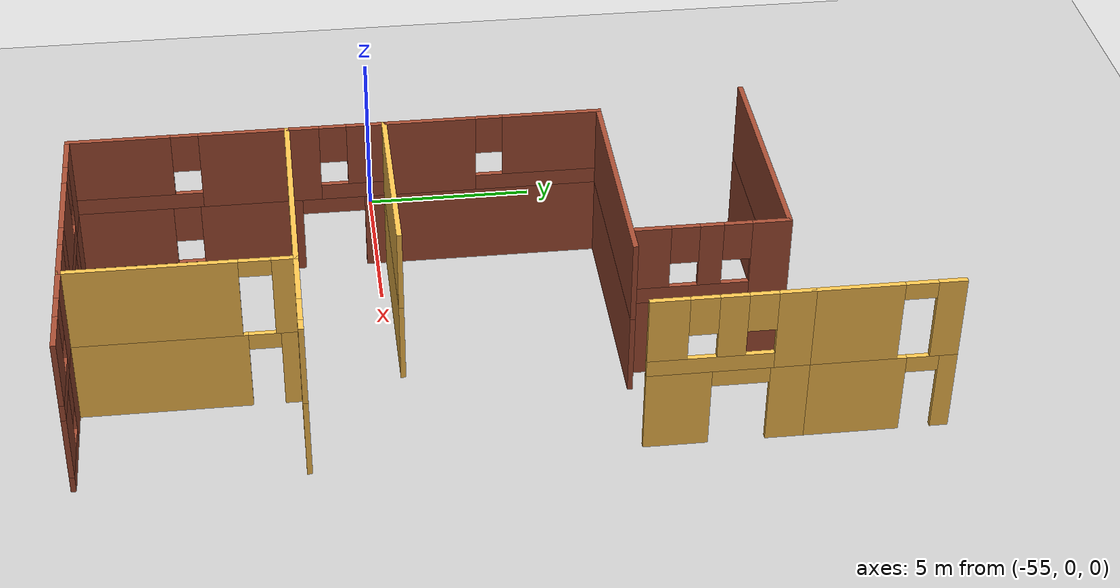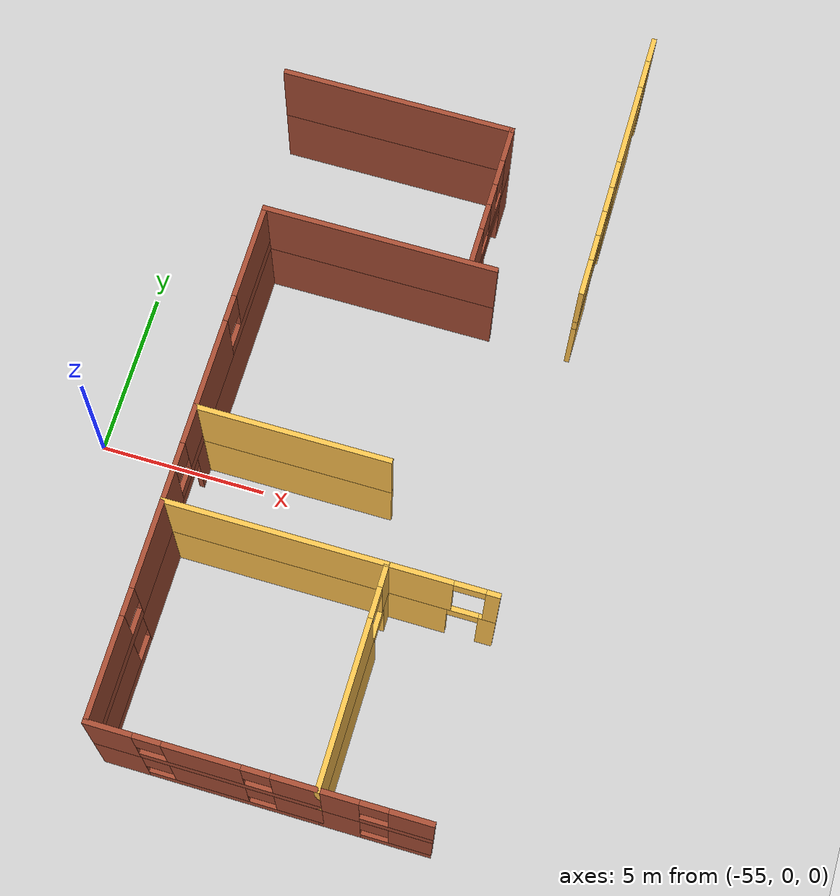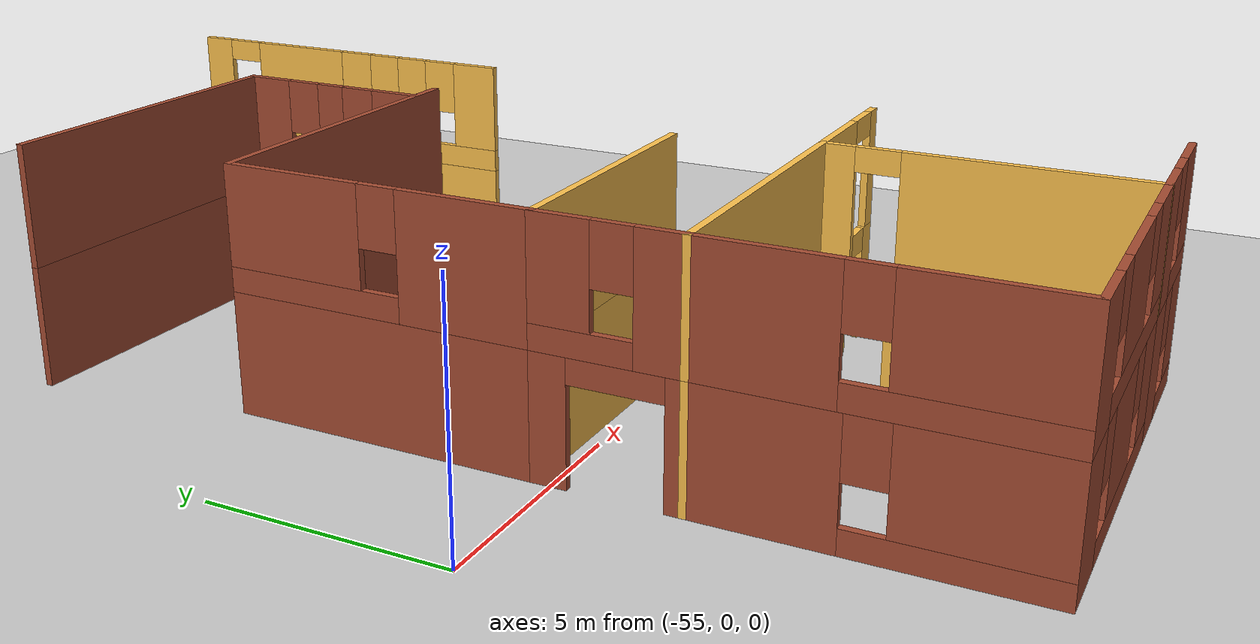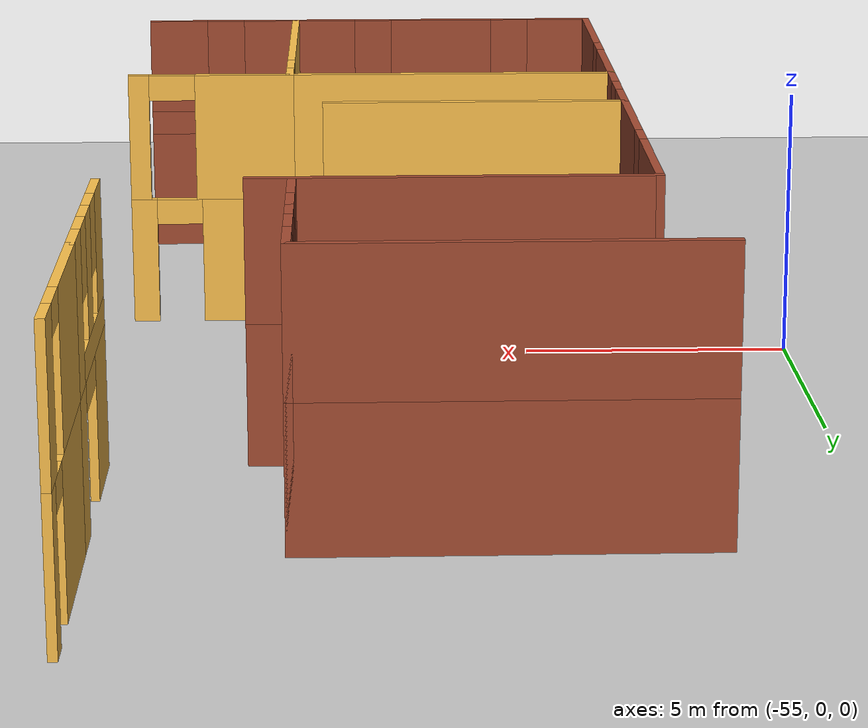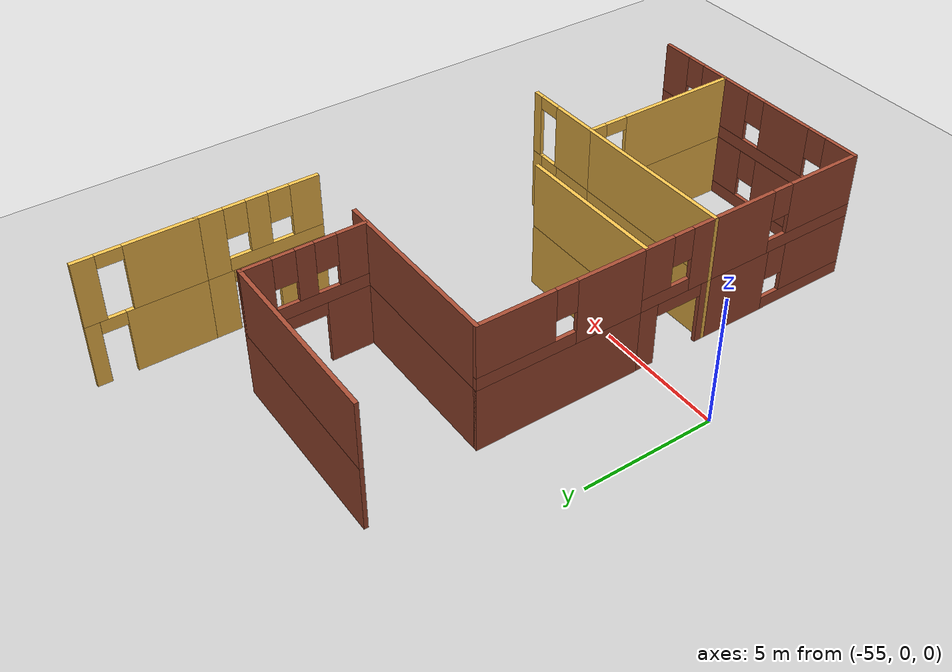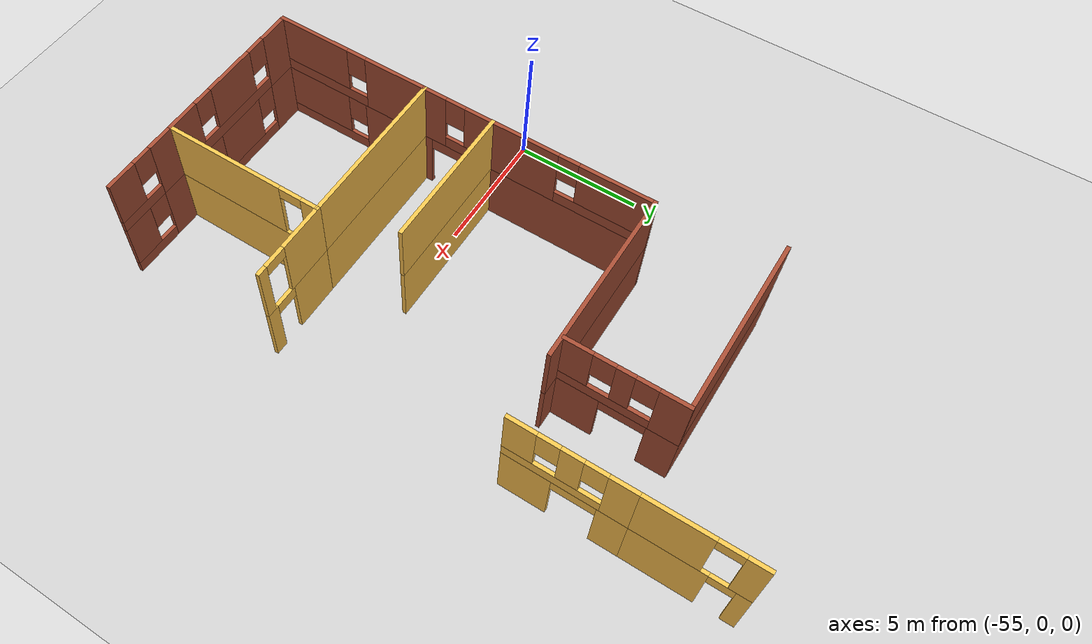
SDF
<sdf version="1.7">
 <world name="default">
  <model name="ground_plane">
   <static>1</static>
   <link name="link">
    <collision name="collision">
     <geometry><plane><normal>0 0 1</normal><size>100 100</size></plane></geometry>
     <surface>
      <contact><collide_bitmask>65535</collide_bitmask></contact>
      <friction><ode><mu>100</mu><mu2>50</mu2></ode></friction>
     </surface>
    </collision>
    <visual name="visual">
     <cast_shadows>0</cast_shadows>
     <geometry><plane><normal>0 0 1</normal><size>100 100</size></plane></geometry>
     <material>
      <script><uri>file://media/materials/scripts/gazebo.material</uri><name>Gazebo/Grey</name></script>
     </material>
    </visual>
   </link>
  </model>
  <model name="DepartmentBuilding">
   <pose>-25.6559 18.8293 0 0 -0 0</pose>
   <link name="Wall_101">
    <collision name="Wall_101_Collision">
     <geometry><box><size>6.5 0.15 2.5</size></box></geometry>
     <pose>0 0 1.25 0 -0 0</pose>
    </collision>
    <visual name="Wall_101_Visual">
     <pose>0 0 1.25 0 -0 0</pose>
     <geometry><box><size>6.5 0.15 2.5</size></box></geometry>
     <material>
      <script><uri>file://media/materials/scripts/gazebo.material</uri><name>Gazebo/Bricks</name></script>
      <ambient>1 1 1 1</ambient>
     </material>
     <meta><layer>0</layer></meta>
    </visual>
    <pose>-26.1405 -15.3142 0 0 -0 1.5708</pose>
   </link>
   <link name="Wall_103">
    <collision name="Wall_103_Collision">
     <geometry><box><size>7 0.15 2.5</size></box></geometry>
     <pose>0 0 1.25 0 -0 0</pose>
    </collision>
    <visual name="Wall_103_Visual">
     <pose>0 0 1.25 0 -0 0</pose>
     <geometry><box><size>7 0.15 2.5</size></box></geometry>
     <material>
      <script><uri>file://media/materials/scripts/gazebo.material</uri><name>Gazebo/Bricks</name></script>
      <ambient>1 1 1 1</ambient>
     </material>
     <meta><layer>0</layer></meta>
    </visual>
    <pose>-22.7155 -12.1392 0 0 -0 0</pose>
   </link>
   <link name="Wall_333">
    <collision name="Wall_333_Collision">
     <geometry><box><size>7 0.15 2.5</size></box></geometry>
     <pose>0 0 1.25 0 -0 0</pose>
    </collision>
    <visual name="Wall_333_Visual">
     <pose>0 0 1.25 0 -0 0</pose>
     <geometry><box><size>7 0.15 2.5</size></box></geometry>
     <material>
      <script><uri>file://media/materials/scripts/gazebo.material</uri><name>Gazebo/Bricks</name></script>
      <ambient>1 1 1 1</ambient>
     </material>
     <meta><layer>0</layer></meta>
    </visual>
    <pose>-23.4444 -7.71094 0 0 -0 0</pose>
   </link>
   <link name="Wall_350">
    <pose>-16.7806 -5.71094 0 0 -0 -1.5708</pose>
    <visual name="Wall_350_Visual_0">
     <pose>-1.86707 0 1.25 0 -0 0</pose>
     <geometry><box><size>0.515865 0.15 2.5</size></box></geometry>
     <material>
      <script><uri>file://media/materials/scripts/gazebo.material</uri><name>Gazebo/Grey</name></script>
      <ambient>1 0.764706 0.305882 1</ambient>
     </material>
     <meta><layer>0</layer></meta>
    </visual>
    <collision name="Wall_350_Collision_0">
     <geometry><box><size>0.515865 0.15 2.5</size></box></geometry>
     <pose>-1.86707 0 1.25 0 -0 0</pose>
    </collision>
    <visual name="Wall_350_Visual_1">
     <pose>0.707932 0 1.25 0 -0 0</pose>
     <geometry><box><size>2.83413 0.15 2.5</size></box></geometry>
     <material>
      <script><uri>file://media/materials/scripts/gazebo.material</uri><name>Gazebo/Grey</name></script>
      <ambient>1 0.764706 0.305882 1</ambient>
     </material>
     <meta><layer>0</layer></meta>
    </visual>
    <collision name="Wall_350_Collision_1">
     <geometry><box><size>2.83413 0.15 2.5</size></box></geometry>
     <pose>0.707932 0 1.25 0 -0 0</pose>
    </collision>
    <visual name="Wall_350_Visual_2">
     <pose>-1.15914 0 2.25 0 -0 0</pose>
     <geometry><box><size>0.9 0.15 0.5</size></box></geometry>
     <material>
      <script><uri>file://media/materials/scripts/gazebo.material</uri><name>Gazebo/Grey</name></script>
      <ambient>1 0.764706 0.305882 1</ambient>
     </material>
     <meta><layer>0</layer></meta>
    </visual>
    <collision name="Wall_350_Collision_2">
     <geometry><box><size>0.9 0.15 0.5</size></box></geometry>
     <pose>-1.15914 0 2.25 0 -0 0</pose>
    </collision>
   </link>
   <link name="Wall_355">
    <pose>-20.0194 -9.88594 0 0 -0 -1.5708</pose>
    <visual name="Wall_355_Visual_0">
     <pose>-1.67202 0 1.25 0 -0 0</pose>
     <geometry><box><size>1.15596 0.15 2.5</size></box></geometry>
     <material>
      <script><uri>file://media/materials/scripts/gazebo.material</uri><name>Gazebo/Bricks</name></script>
      <ambient>1 1 1 1</ambient>
     </material>
     <meta><layer>0</layer></meta>
    </visual>
    <collision name="Wall_355_Collision_0">
     <geometry><box><size>1.15596 0.15 2.5</size></box></geometry>
     <pose>-1.67202 0 1.25 0 -0 0</pose>
    </collision>
    <visual name="Wall_355_Visual_1">
     <pose>1.42798 0 1.25 0 -0 0</pose>
     <geometry><box><size>1.64404 0.15 2.5</size></box></geometry>
     <material>
      <script><uri>file://media/materials/scripts/gazebo.material</uri><name>Gazebo/Bricks</name></script>
      <ambient>1 1 1 1</ambient>
     </material>
     <meta><layer>0</layer></meta>
    </visual>
    <collision name="Wall_355_Collision_1">
     <geometry><box><size>1.64404 0.15 2.5</size></box></geometry>
     <pose>1.42798 0 1.25 0 -0 0</pose>
    </collision>
    <visual name="Wall_355_Visual_2">
     <pose>-0.244043 0 2.25 0 -0 0</pose>
     <geometry><box><size>1.7 0.15 0.5</size></box></geometry>
     <material>
      <script><uri>file://media/materials/scripts/gazebo.material</uri><name>Gazebo/Bricks</name></script>
      <ambient>1 1 1 1</ambient>
     </material>
     <meta><layer>0</layer></meta>
    </visual>
    <collision name="Wall_355_Collision_2">
     <geometry><box><size>1.7 0.15 0.5</size></box></geometry>
     <pose>-0.244043 0 2.25 0 -0 0</pose>
    </collision>
   </link>
   <link name="Wall_358">
    <pose>-16.7806 -9.93594 0 0 -0 -1.5708</pose>
    <visual name="Wall_358_Visual_0">
     <pose>-1.70844 0 1.25 0 -0 0</pose>
     <geometry><box><size>1.08312 0.15 2.5</size></box></geometry>
     <material>
      <script><uri>file://media/materials/scripts/gazebo.material</uri><name>Gazebo/Grey</name></script>
      <ambient>1 0.764706 0.305882 1</ambient>
     </material>
     <meta><layer>0</layer></meta>
    </visual>
    <collision name="Wall_358_Collision_0">
     <geometry><box><size>1.08312 0.15 2.5</size></box></geometry>
     <pose>-1.70844 0 1.25 0 -0 0</pose>
    </collision>
    <visual name="Wall_358_Visual_1">
     <pose>1.34156 0 1.25 0 -0 0</pose>
     <geometry><box><size>1.81689 0.15 2.5</size></box></geometry>
     <material>
      <script><uri>file://media/materials/scripts/gazebo.material</uri><name>Gazebo/Grey</name></script>
      <ambient>1 0.764706 0.305882 1</ambient>
     </material>
     <meta><layer>0</layer></meta>
    </visual>
    <collision name="Wall_358_Collision_1">
     <geometry><box><size>1.81689 0.15 2.5</size></box></geometry>
     <pose>1.34156 0 1.25 0 -0 0</pose>
    </collision>
    <visual name="Wall_358_Visual_2">
     <pose>-0.366885 0 2.25 0 -0 0</pose>
     <geometry><box><size>1.6 0.15 0.5</size></box></geometry>
     <material>
      <script><uri>file://media/materials/scripts/gazebo.material</uri><name>Gazebo/Grey</name></script>
      <ambient>1 0.764706 0.305882 1</ambient>
     </material>
     <meta><layer>0</layer></meta>
    </visual>
    <collision name="Wall_358_Collision_2">
     <geometry><box><size>1.6 0.15 0.5</size></box></geometry>
     <pose>-0.366885 0 2.25 0 -0 0</pose>
    </collision>
   </link>
   <link name="Wall_819">
    <pose>-18.2405 -21.3392 2.5 0 -0 3.14159</pose>
    <visual name="Wall_819_Visual_0">
     <pose>-1.42372 0 1.25 0 -0 0</pose>
     <geometry><box><size>0.402556 0.15 2.5</size></box></geometry>
     <material>
      <script><uri>file://media/materials/scripts/gazebo.material</uri><name>Gazebo/Grey</name></script>
      <ambient>1 0.764706 0.305882 1</ambient>
     </material>
     <meta><layer>1</layer></meta>
    </visual>
    <collision name="Wall_819_Collision_0">
     <geometry><box><size>0.402556 0.15 2.5</size></box></geometry>
     <pose>-1.42372 0 1.25 0 -0 0</pose>
    </collision>
    <visual name="Wall_819_Visual_1">
     <pose>0.651278 0 1.25 0 -0 0</pose>
     <geometry><box><size>1.94744 0.15 2.5</size></box></geometry>
     <material>
      <script><uri>file://media/materials/scripts/gazebo.material</uri><name>Gazebo/Grey</name></script>
      <ambient>1 0.764706 0.305882 1</ambient>
     </material>
     <meta><layer>1</layer></meta>
    </visual>
    <collision name="Wall_819_Collision_1">
     <geometry><box><size>1.94744 0.15 2.5</size></box></geometry>
     <pose>0.651278 0 1.25 0 -0 0</pose>
    </collision>
    <visual name="Wall_819_Visual_2">
     <pose>-0.772444 0 2.25 0 -0 0</pose>
     <geometry><box><size>0.9 0.15 0.5</size></box></geometry>
     <material>
      <script><uri>file://media/materials/scripts/gazebo.material</uri><name>Gazebo/Grey</name></script>
      <ambient>1 0.764706 0.305882 1</ambient>
     </material>
     <meta><layer>1</layer></meta>
    </visual>
    <collision name="Wall_819_Collision_2">
     <geometry><box><size>0.9 0.15 0.5</size></box></geometry>
     <pose>-0.772444 0 2.25 0 -0 0</pose>
    </collision>
   </link>
   <link name="Wall_820">
    <pose>-19.7905 -24.5142 2.5 0 -0 -1.5708</pose>
    <visual name="Wall_820_Visual_0">
     <pose>-2.87846 0 1.25 0 -0 0</pose>
     <geometry><box><size>0.743073 0.15 2.5</size></box></geometry>
     <material>
      <script><uri>file://media/materials/scripts/gazebo.material</uri><name>Gazebo/Grey</name></script>
      <ambient>1 0.764706 0.305882 1</ambient>
     </material>
     <meta><layer>1</layer></meta>
    </visual>
    <collision name="Wall_820_Collision_0">
     <geometry><box><size>0.743073 0.15 2.5</size></box></geometry>
     <pose>-2.87846 0 1.25 0 -0 0</pose>
    </collision>
    <visual name="Wall_820_Visual_1">
     <pose>0.821537 0 1.25 0 -0 0</pose>
     <geometry><box><size>4.85693 0.15 2.5</size></box></geometry>
     <material>
      <script><uri>file://media/materials/scripts/gazebo.material</uri><name>Gazebo/Grey</name></script>
      <ambient>1 0.764706 0.305882 1</ambient>
     </material>
     <meta><layer>1</layer></meta>
    </visual>
    <collision name="Wall_820_Collision_1">
     <geometry><box><size>4.85693 0.15 2.5</size></box></geometry>
     <pose>0.821537 0 1.25 0 -0 0</pose>
    </collision>
    <visual name="Wall_820_Visual_2">
     <pose>-2.05693 0 2.25 0 -0 0</pose>
     <geometry><box><size>0.9 0.15 0.5</size></box></geometry>
     <material>
      <script><uri>file://media/materials/scripts/gazebo.material</uri><name>Gazebo/Grey</name></script>
      <ambient>1 0.764706 0.305882 1</ambient>
     </material>
     <meta><layer>1</layer></meta>
    </visual>
    <collision name="Wall_820_Collision_2">
     <geometry><box><size>0.9 0.15 0.5</size></box></geometry>
     <pose>-2.05693 0 2.25 0 -0 0</pose>
    </collision>
   </link>
   <link name="Wall_821">
    <pose>-18.2405 -27.6892 2.5 0 -0 0</pose>
    <visual name="Wall_821_Visual_0">
     <pose>-1.02406 0 1.25 0 -0 0</pose>
     <geometry><box><size>1.20187 0.15 2.5</size></box></geometry>
     <material>
      <script><uri>file://media/materials/scripts/gazebo.material</uri><name>Gazebo/Bricks</name></script>
      <ambient>1 1 1 1</ambient>
     </material>
     <meta><layer>1</layer></meta>
    </visual>
    <collision name="Wall_821_Collision_0">
     <geometry><box><size>1.20187 0.15 2.5</size></box></geometry>
     <pose>-1.02406 0 1.25 0 -0 0</pose>
    </collision>
    <visual name="Wall_821_Visual_1">
     <pose>0.600936 0 0.25 0 -0 0</pose>
     <geometry><box><size>2.04813 0.15 0.5</size></box></geometry>
     <material>
      <script><uri>file://media/materials/scripts/gazebo.material</uri><name>Gazebo/Bricks</name></script>
      <ambient>1 1 1 1</ambient>
     </material>
     <meta><layer>1</layer></meta>
    </visual>
    <collision name="Wall_821_Collision_1">
     <geometry><box><size>2.04813 0.15 0.5</size></box></geometry>
     <pose>0.600936 0 0.25 0 -0 0</pose>
    </collision>
    <visual name="Wall_821_Visual_2">
     <pose>1.00094 0 1.5 0 -0 0</pose>
     <geometry><box><size>1.24813 0.15 2</size></box></geometry>
     <material>
      <script><uri>file://media/materials/scripts/gazebo.material</uri><name>Gazebo/Bricks</name></script>
      <ambient>1 1 1 1</ambient>
     </material>
     <meta><layer>1</layer></meta>
    </visual>
    <collision name="Wall_821_Collision_2">
     <geometry><box><size>1.24813 0.15 2</size></box></geometry>
     <pose>1.00094 0 1.5 0 -0 0</pose>
    </collision>
    <visual name="Wall_821_Visual_3">
     <pose>-0.023129 0 1.9 0 -0 0</pose>
     <geometry><box><size>0.8 0.15 1.2</size></box></geometry>
     <material>
      <script><uri>file://media/materials/scripts/gazebo.material</uri><name>Gazebo/Bricks</name></script>
      <ambient>1 1 1 1</ambient>
     </material>
     <meta><layer>1</layer></meta>
    </visual>
    <collision name="Wall_821_Collision_3">
     <geometry><box><size>0.8 0.15 1.2</size></box></geometry>
     <pose>-0.023129 0 1.9 0 -0 0</pose>
    </collision>
   </link>
   <link name="Wall_822">
    <collision name="Wall_822_Collision">
     <geometry><box><size>6.5 0.15 2.5</size></box></geometry>
     <pose>0 0 1.25 0 -0 0</pose>
    </collision>
    <visual name="Wall_822_Visual">
     <pose>0 0 1.25 0 -0 0</pose>
     <geometry><box><size>6.5 0.15 2.5</size></box></geometry>
     <material>
      <script><uri>file://media/materials/scripts/gazebo.material</uri><name>Gazebo/Grey</name></script>
      <ambient>1 0.764706 0.305882 1</ambient>
     </material>
     <meta><layer>1</layer></meta>
    </visual>
    <pose>-22.9655 -21.3392 2.5 0 -0 3.14159</pose>
   </link>
   <link name="Wall_823">
    <pose>-26.1405 -24.5142 2.5 0 -0 -1.5708</pose>
    <visual name="Wall_823_Visual_0">
     <pose>-1.92246 0 1.25 0 -0 0</pose>
     <geometry><box><size>2.65509 0.15 2.5</size></box></geometry>
     <material>
      <script><uri>file://media/materials/scripts/gazebo.material</uri><name>Gazebo/Bricks</name></script>
      <ambient>1 1 1 1</ambient>
     </material>
     <meta><layer>1</layer></meta>
    </visual>
    <collision name="Wall_823_Collision_0">
     <geometry><box><size>2.65509 0.15 2.5</size></box></geometry>
     <pose>-1.92246 0 1.25 0 -0 0</pose>
    </collision>
    <visual name="Wall_823_Visual_1">
     <pose>1.32754 0 0.25 0 -0 0</pose>
     <geometry><box><size>3.84491 0.15 0.5</size></box></geometry>
     <material>
      <script><uri>file://media/materials/scripts/gazebo.material</uri><name>Gazebo/Bricks</name></script>
      <ambient>1 1 1 1</ambient>
     </material>
     <meta><layer>1</layer></meta>
    </visual>
    <collision name="Wall_823_Collision_1">
     <geometry><box><size>3.84491 0.15 0.5</size></box></geometry>
     <pose>1.32754 0 0.25 0 -0 0</pose>
    </collision>
    <visual name="Wall_823_Visual_2">
     <pose>1.72754 0 1.5 0 -0 0</pose>
     <geometry><box><size>3.04491 0.15 2</size></box></geometry>
     <material>
      <script><uri>file://media/materials/scripts/gazebo.material</uri><name>Gazebo/Bricks</name></script>
      <ambient>1 1 1 1</ambient>
     </material>
     <meta><layer>1</layer></meta>
    </visual>
    <collision name="Wall_823_Collision_2">
     <geometry><box><size>3.04491 0.15 2</size></box></geometry>
     <pose>1.72754 0 1.5 0 -0 0</pose>
    </collision>
    <visual name="Wall_823_Visual_3">
     <pose>-0.194914 0 1.9 0 -0 0</pose>
     <geometry><box><size>0.8 0.15 1.2</size></box></geometry>
     <material>
      <script><uri>file://media/materials/scripts/gazebo.material</uri><name>Gazebo/Bricks</name></script>
      <ambient>1 1 1 1</ambient>
     </material>
     <meta><layer>1</layer></meta>
    </visual>
    <collision name="Wall_823_Collision_3">
     <geometry><box><size>0.8 0.15 1.2</size></box></geometry>
     <pose>-0.194914 0 1.9 0 -0 0</pose>
    </collision>
   </link>
   <link name="Wall_824">
    <pose>-22.9655 -27.6892 2.5 0 -0 0</pose>
    <visual name="Wall_824_Visual_0">
     <pose>-2.56791 0 1.25 0 -0 0</pose>
     <geometry><box><size>1.36419 0.15 2.5</size></box></geometry>
     <material>
      <script><uri>file://media/materials/scripts/gazebo.material</uri><name>Gazebo/Bricks</name></script>
      <ambient>1 1 1 1</ambient>
     </material>
     <meta><layer>1</layer></meta>
    </visual>
    <collision name="Wall_824_Collision_0">
     <geometry><box><size>1.36419 0.15 2.5</size></box></geometry>
     <pose>-2.56791 0 1.25 0 -0 0</pose>
    </collision>
    <visual name="Wall_824_Visual_1">
     <pose>0.682095 0 0.25 0 -0 0</pose>
     <geometry><box><size>5.13581 0.15 0.5</size></box></geometry>
     <material>
      <script><uri>file://media/materials/scripts/gazebo.material</uri><name>Gazebo/Bricks</name></script>
      <ambient>1 1 1 1</ambient>
     </material>
     <meta><layer>1</layer></meta>
    </visual>
    <collision name="Wall_824_Collision_1">
     <geometry><box><size>5.13581 0.15 0.5</size></box></geometry>
     <pose>0.682095 0 0.25 0 -0 0</pose>
    </collision>
    <visual name="Wall_824_Visual_2">
     <pose>0.002956 0 1.5 0 -0 0</pose>
     <geometry><box><size>2.17753 0.15 2</size></box></geometry>
     <material>
      <script><uri>file://media/materials/scripts/gazebo.material</uri><name>Gazebo/Bricks</name></script>
      <ambient>1 1 1 1</ambient>
     </material>
     <meta><layer>1</layer></meta>
    </visual>
    <collision name="Wall_824_Collision_2">
     <geometry><box><size>2.17753 0.15 2</size></box></geometry>
     <pose>0.002956 0 1.5 0 -0 0</pose>
    </collision>
    <visual name="Wall_824_Visual_3">
     <pose>2.57086 0 1.5 0 -0 0</pose>
     <geometry><box><size>1.35828 0.15 2</size></box></geometry>
     <material>
      <script><uri>file://media/materials/scripts/gazebo.material</uri><name>Gazebo/Bricks</name></script>
      <ambient>1 1 1 1</ambient>
     </material>
     <meta><layer>1</layer></meta>
    </visual>
    <collision name="Wall_824_Collision_3">
     <geometry><box><size>1.35828 0.15 2</size></box></geometry>
     <pose>2.57086 0 1.5 0 -0 0</pose>
    </collision>
    <visual name="Wall_824_Visual_4">
     <pose>-1.48581 0 1.9 0 -0 0</pose>
     <geometry><box><size>0.8 0.15 1.2</size></box></geometry>
     <material>
      <script><uri>file://media/materials/scripts/gazebo.material</uri><name>Gazebo/Bricks</name></script>
      <ambient>1 1 1 1</ambient>
     </material>
     <meta><layer>1</layer></meta>
    </visual>
    <collision name="Wall_824_Collision_4">
     <geometry><box><size>0.8 0.15 1.2</size></box></geometry>
     <pose>-1.48581 0 1.9 0 -0 0</pose>
    </collision>
    <visual name="Wall_824_Visual_5">
     <pose>1.49172 0 1.9 0 -0 0</pose>
     <geometry><box><size>0.8 0.15 1.2</size></box></geometry>
     <material>
      <script><uri>file://media/materials/scripts/gazebo.material</uri><name>Gazebo/Bricks</name></script>
      <ambient>1 1 1 1</ambient>
     </material>
     <meta><layer>1</layer></meta>
    </visual>
    <collision name="Wall_824_Collision_5">
     <geometry><box><size>0.8 0.15 1.2</size></box></geometry>
     <pose>1.49172 0 1.9 0 -0 0</pose>
    </collision>
   </link>
   <link name="Wall_825">
    <pose>-26.1405 -19.9142 2.5 0 -0 1.5708</pose>
    <visual name="Wall_825_Visual_0">
     <pose>-0.997547 0 1.25 0 -0 0</pose>
     <geometry><box><size>1.0049 0.15 2.5</size></box></geometry>
     <material>
      <script><uri>file://media/materials/scripts/gazebo.material</uri><name>Gazebo/Bricks</name></script>
      <ambient>1 1 1 1</ambient>
     </material>
     <meta><layer>1</layer></meta>
    </visual>
    <collision name="Wall_825_Collision_0">
     <geometry><box><size>1.0049 0.15 2.5</size></box></geometry>
     <pose>-0.997547 0 1.25 0 -0 0</pose>
    </collision>
    <visual name="Wall_825_Visual_1">
     <pose>0.502453 0 0.25 0 -0 0</pose>
     <geometry><box><size>1.9951 0.15 0.5</size></box></geometry>
     <material>
      <script><uri>file://media/materials/scripts/gazebo.material</uri><name>Gazebo/Bricks</name></script>
      <ambient>1 1 1 1</ambient>
     </material>
     <meta><layer>1</layer></meta>
    </visual>
    <collision name="Wall_825_Collision_1">
     <geometry><box><size>1.9951 0.15 0.5</size></box></geometry>
     <pose>0.502453 0 0.25 0 -0 0</pose>
    </collision>
    <visual name="Wall_825_Visual_2">
     <pose>0.902453 0 1.5 0 -0 0</pose>
     <geometry><box><size>1.1951 0.15 2</size></box></geometry>
     <material>
      <script><uri>file://media/materials/scripts/gazebo.material</uri><name>Gazebo/Bricks</name></script>
      <ambient>1 1 1 1</ambient>
     </material>
     <meta><layer>1</layer></meta>
    </visual>
    <collision name="Wall_825_Collision_2">
     <geometry><box><size>1.1951 0.15 2</size></box></geometry>
     <pose>0.902453 0 1.5 0 -0 0</pose>
    </collision>
    <visual name="Wall_825_Visual_3">
     <pose>-0.095095 0 1.9 0 -0 0</pose>
     <geometry><box><size>0.8 0.15 1.2</size></box></geometry>
     <material>
      <script><uri>file://media/materials/scripts/gazebo.material</uri><name>Gazebo/Bricks</name></script>
      <ambient>1 1 1 1</ambient>
     </material>
     <meta><layer>1</layer></meta>
    </visual>
    <collision name="Wall_825_Collision_3">
     <geometry><box><size>0.8 0.15 1.2</size></box></geometry>
     <pose>-0.095095 0 1.9 0 -0 0</pose>
    </collision>
   </link>
   <link name="Wall_826">
    <collision name="Wall_826_Collision">
     <geometry><box><size>5.75 0.15 2.5</size></box></geometry>
     <pose>0 0 1.25 0 -0 0</pose>
    </collision>
    <visual name="Wall_826_Visual">
     <pose>0 0 1.25 0 -0 0</pose>
     <geometry><box><size>5.75 0.15 2.5</size></box></geometry>
     <material>
      <script><uri>file://media/materials/scripts/gazebo.material</uri><name>Gazebo/Grey</name></script>
      <ambient>1 0.764706 0.305882 1</ambient>
     </material>
     <meta><layer>1</layer></meta>
    </visual>
    <pose>-23.3405 -18.4892 2.5 0 -0 0</pose>
   </link>
   <link name="Wall_827">
    <pose>-26.1405 -15.3142 2.5 0 -0 1.5708</pose>
    <visual name="Wall_827_Visual_0">
     <pose>-1.86968 0 1.25 0 -0 0</pose>
     <geometry><box><size>2.76063 0.15 2.5</size></box></geometry>
     <material>
      <script><uri>file://media/materials/scripts/gazebo.material</uri><name>Gazebo/Bricks</name></script>
      <ambient>1 1 1 1</ambient>
     </material>
     <meta><layer>1</layer></meta>
    </visual>
    <collision name="Wall_827_Collision_0">
     <geometry><box><size>2.76063 0.15 2.5</size></box></geometry>
     <pose>-1.86968 0 1.25 0 -0 0</pose>
    </collision>
    <visual name="Wall_827_Visual_1">
     <pose>1.38032 0 0.25 0 -0 0</pose>
     <geometry><box><size>3.73937 0.15 0.5</size></box></geometry>
     <material>
      <script><uri>file://media/materials/scripts/gazebo.material</uri><name>Gazebo/Bricks</name></script>
      <ambient>1 1 1 1</ambient>
     </material>
     <meta><layer>1</layer></meta>
    </visual>
    <collision name="Wall_827_Collision_1">
     <geometry><box><size>3.73937 0.15 0.5</size></box></geometry>
     <pose>1.38032 0 0.25 0 -0 0</pose>
    </collision>
    <visual name="Wall_827_Visual_2">
     <pose>1.78032 0 1.5 0 -0 0</pose>
     <geometry><box><size>2.93937 0.15 2</size></box></geometry>
     <material>
      <script><uri>file://media/materials/scripts/gazebo.material</uri><name>Gazebo/Bricks</name></script>
      <ambient>1 1 1 1</ambient>
     </material>
     <meta><layer>1</layer></meta>
    </visual>
    <collision name="Wall_827_Collision_2">
     <geometry><box><size>2.93937 0.15 2</size></box></geometry>
     <pose>1.78032 0 1.5 0 -0 0</pose>
    </collision>
    <visual name="Wall_827_Visual_3">
     <pose>-0.089368 0 1.9 0 -0 0</pose>
     <geometry><box><size>0.8 0.15 1.2</size></box></geometry>
     <material>
      <script><uri>file://media/materials/scripts/gazebo.material</uri><name>Gazebo/Bricks</name></script>
      <ambient>1 1 1 1</ambient>
     </material>
     <meta><layer>1</layer></meta>
    </visual>
    <collision name="Wall_827_Collision_3">
     <geometry><box><size>0.8 0.15 1.2</size></box></geometry>
     <pose>-0.089368 0 1.9 0 -0 0</pose>
    </collision>
   </link>
   <link name="Wall_828">
    <collision name="Wall_828_Collision">
     <geometry><box><size>7 0.15 2.5</size></box></geometry>
     <pose>0 0 1.25 0 -0 0</pose>
    </collision>
    <visual name="Wall_828_Visual">
     <pose>0 0 1.25 0 -0 0</pose>
     <geometry><box><size>7 0.15 2.5</size></box></geometry>
     <material>
      <script><uri>file://media/materials/scripts/gazebo.material</uri><name>Gazebo/Bricks</name></script>
      <ambient>1 1 1 1</ambient>
     </material>
     <meta><layer>1</layer></meta>
    </visual>
    <pose>-22.7155 -12.1392 2.5 0 -0 0</pose>
   </link>
   <link name="Wall_87">
    <pose>-18.2405 -21.3392 0 0 -0 3.14159</pose>
    <visual name="Wall_87_Visual_0">
     <pose>-1.37177 0 1.25 0 -0 0</pose>
     <geometry><box><size>0.506465 0.15 2.5</size></box></geometry>
     <material>
      <script><uri>file://media/materials/scripts/gazebo.material</uri><name>Gazebo/Grey</name></script>
      <ambient>1 0.764706 0.305882 1</ambient>
     </material>
     <meta><layer>0</layer></meta>
    </visual>
    <collision name="Wall_87_Collision_0">
     <geometry><box><size>0.506465 0.15 2.5</size></box></geometry>
     <pose>-1.37177 0 1.25 0 -0 0</pose>
    </collision>
    <visual name="Wall_87_Visual_1">
     <pose>0.703232 0 1.25 0 -0 0</pose>
     <geometry><box><size>1.84353 0.15 2.5</size></box></geometry>
     <material>
      <script><uri>file://media/materials/scripts/gazebo.material</uri><name>Gazebo/Grey</name></script>
      <ambient>1 0.764706 0.305882 1</ambient>
     </material>
     <meta><layer>0</layer></meta>
    </visual>
    <collision name="Wall_87_Collision_1">
     <geometry><box><size>1.84353 0.15 2.5</size></box></geometry>
     <pose>0.703232 0 1.25 0 -0 0</pose>
    </collision>
    <visual name="Wall_87_Visual_2">
     <pose>-0.668535 0 2.25 0 -0 0</pose>
     <geometry><box><size>0.9 0.15 0.5</size></box></geometry>
     <material>
      <script><uri>file://media/materials/scripts/gazebo.material</uri><name>Gazebo/Grey</name></script>
      <ambient>1 0.764706 0.305882 1</ambient>
     </material>
     <meta><layer>0</layer></meta>
    </visual>
    <collision name="Wall_87_Collision_2">
     <geometry><box><size>0.9 0.15 0.5</size></box></geometry>
     <pose>-0.668535 0 2.25 0 -0 0</pose>
    </collision>
   </link>
   <link name="Wall_89">
    <pose>-19.7905 -24.5142 0 0 -0 -1.5708</pose>
    <visual name="Wall_89_Visual_0">
     <pose>-2.94571 0 1.25 0 -0 0</pose>
     <geometry><box><size>0.608578 0.15 2.5</size></box></geometry>
     <material>
      <script><uri>file://media/materials/scripts/gazebo.material</uri><name>Gazebo/Grey</name></script>
      <ambient>1 0.764706 0.305882 1</ambient>
     </material>
     <meta><layer>0</layer></meta>
    </visual>
    <collision name="Wall_89_Collision_0">
     <geometry><box><size>0.608578 0.15 2.5</size></box></geometry>
     <pose>-2.94571 0 1.25 0 -0 0</pose>
    </collision>
    <visual name="Wall_89_Visual_1">
     <pose>0.754289 0 1.25 0 -0 0</pose>
     <geometry><box><size>4.99142 0.15 2.5</size></box></geometry>
     <material>
      <script><uri>file://media/materials/scripts/gazebo.material</uri><name>Gazebo/Grey</name></script>
      <ambient>1 0.764706 0.305882 1</ambient>
     </material>
     <meta><layer>0</layer></meta>
    </visual>
    <collision name="Wall_89_Collision_1">
     <geometry><box><size>4.99142 0.15 2.5</size></box></geometry>
     <pose>0.754289 0 1.25 0 -0 0</pose>
    </collision>
    <visual name="Wall_89_Visual_2">
     <pose>-2.19142 0 2.25 0 -0 0</pose>
     <geometry><box><size>0.9 0.15 0.5</size></box></geometry>
     <material>
      <script><uri>file://media/materials/scripts/gazebo.material</uri><name>Gazebo/Grey</name></script>
      <ambient>1 0.764706 0.305882 1</ambient>
     </material>
     <meta><layer>0</layer></meta>
    </visual>
    <collision name="Wall_89_Collision_2">
     <geometry><box><size>0.9 0.15 0.5</size></box></geometry>
     <pose>-2.19142 0 2.25 0 -0 0</pose>
    </collision>
   </link>
   <link name="Wall_91">
    <pose>-18.2405 -27.6892 0 0 -0 0</pose>
    <visual name="Wall_91_Visual_0">
     <pose>-1.01988 0 1.25 0 -0 0</pose>
     <geometry><box><size>1.21023 0.15 2.5</size></box></geometry>
     <material>
      <script><uri>file://media/materials/scripts/gazebo.material</uri><name>Gazebo/Bricks</name></script>
      <ambient>1 1 1 1</ambient>
     </material>
     <meta><layer>0</layer></meta>
    </visual>
    <collision name="Wall_91_Collision_0">
     <geometry><box><size>1.21023 0.15 2.5</size></box></geometry>
     <pose>-1.01988 0 1.25 0 -0 0</pose>
    </collision>
    <visual name="Wall_91_Visual_1">
     <pose>0.605115 0 0.25 0 -0 0</pose>
     <geometry><box><size>2.03977 0.15 0.5</size></box></geometry>
     <material>
      <script><uri>file://media/materials/scripts/gazebo.material</uri><name>Gazebo/Bricks</name></script>
      <ambient>1 1 1 1</ambient>
     </material>
     <meta><layer>0</layer></meta>
    </visual>
    <collision name="Wall_91_Collision_1">
     <geometry><box><size>2.03977 0.15 0.5</size></box></geometry>
     <pose>0.605115 0 0.25 0 -0 0</pose>
    </collision>
    <visual name="Wall_91_Visual_2">
     <pose>1.00511 0 1.5 0 -0 0</pose>
     <geometry><box><size>1.23977 0.15 2</size></box></geometry>
     <material>
      <script><uri>file://media/materials/scripts/gazebo.material</uri><name>Gazebo/Bricks</name></script>
      <ambient>1 1 1 1</ambient>
     </material>
     <meta><layer>0</layer></meta>
    </visual>
    <collision name="Wall_91_Collision_2">
     <geometry><box><size>1.23977 0.15 2</size></box></geometry>
     <pose>1.00511 0 1.5 0 -0 0</pose>
    </collision>
    <visual name="Wall_91_Visual_3">
     <pose>-0.014771 0 1.9 0 -0 0</pose>
     <geometry><box><size>0.8 0.15 1.2</size></box></geometry>
     <material>
      <script><uri>file://media/materials/scripts/gazebo.material</uri><name>Gazebo/Bricks</name></script>
      <ambient>1 1 1 1</ambient>
     </material>
     <meta><layer>0</layer></meta>
    </visual>
    <collision name="Wall_91_Collision_3">
     <geometry><box><size>0.8 0.15 1.2</size></box></geometry>
     <pose>-0.014771 0 1.9 0 -0 0</pose>
    </collision>
   </link>
   <link name="Wall_93">
    <collision name="Wall_93_Collision">
     <geometry><box><size>6.5 0.15 2.5</size></box></geometry>
     <pose>0 0 1.25 0 -0 0</pose>
    </collision>
    <visual name="Wall_93_Visual">
     <pose>0 0 1.25 0 -0 0</pose>
     <geometry><box><size>6.5 0.15 2.5</size></box></geometry>
     <material>
      <script><uri>file://media/materials/scripts/gazebo.material</uri><name>Gazebo/Grey</name></script>
      <ambient>1 0.764706 0.305882 1</ambient>
     </material>
     <meta><layer>0</layer></meta>
    </visual>
    <pose>-22.9655 -21.3392 0 0 -0 3.14159</pose>
   </link>
   <link name="Wall_95">
    <pose>-26.1405 -24.5142 0 0 -0 -1.5708</pose>
    <visual name="Wall_95_Visual_0">
     <pose>-1.86926 0 1.25 0 -0 0</pose>
     <geometry><box><size>2.76149 0.15 2.5</size></box></geometry>
     <material>
      <script><uri>file://media/materials/scripts/gazebo.material</uri><name>Gazebo/Bricks</name></script>
      <ambient>1 1 1 1</ambient>
     </material>
     <meta><layer>0</layer></meta>
    </visual>
    <collision name="Wall_95_Collision_0">
     <geometry><box><size>2.76149 0.15 2.5</size></box></geometry>
     <pose>-1.86926 0 1.25 0 -0 0</pose>
    </collision>
    <visual name="Wall_95_Visual_1">
     <pose>1.38074 0 0.25 0 -0 0</pose>
     <geometry><box><size>3.73851 0.15 0.5</size></box></geometry>
     <material>
      <script><uri>file://media/materials/scripts/gazebo.material</uri><name>Gazebo/Bricks</name></script>
      <ambient>1 1 1 1</ambient>
     </material>
     <meta><layer>0</layer></meta>
    </visual>
    <collision name="Wall_95_Collision_1">
     <geometry><box><size>3.73851 0.15 0.5</size></box></geometry>
     <pose>1.38074 0 0.25 0 -0 0</pose>
    </collision>
    <visual name="Wall_95_Visual_2">
     <pose>1.78074 0 1.5 0 -0 0</pose>
     <geometry><box><size>2.93851 0.15 2</size></box></geometry>
     <material>
      <script><uri>file://media/materials/scripts/gazebo.material</uri><name>Gazebo/Bricks</name></script>
      <ambient>1 1 1 1</ambient>
     </material>
     <meta><layer>0</layer></meta>
    </visual>
    <collision name="Wall_95_Collision_2">
     <geometry><box><size>2.93851 0.15 2</size></box></geometry>
     <pose>1.78074 0 1.5 0 -0 0</pose>
    </collision>
    <visual name="Wall_95_Visual_3">
     <pose>-0.088512 0 1.9 0 -0 0</pose>
     <geometry><box><size>0.8 0.15 1.2</size></box></geometry>
     <material>
      <script><uri>file://media/materials/scripts/gazebo.material</uri><name>Gazebo/Bricks</name></script>
      <ambient>1 1 1 1</ambient>
     </material>
     <meta><layer>0</layer></meta>
    </visual>
    <collision name="Wall_95_Collision_3">
     <geometry><box><size>0.8 0.15 1.2</size></box></geometry>
     <pose>-0.088512 0 1.9 0 -0 0</pose>
    </collision>
   </link>
   <link name="Wall_96">
    <pose>-22.9655 -27.6892 0 0 -0 0</pose>
    <visual name="Wall_96_Visual_0">
     <pose>-2.56169 0 1.25 0 -0 0</pose>
     <geometry><box><size>1.37662 0.15 2.5</size></box></geometry>
     <material>
      <script><uri>file://media/materials/scripts/gazebo.material</uri><name>Gazebo/Bricks</name></script>
      <ambient>1 1 1 1</ambient>
     </material>
     <meta><layer>0</layer></meta>
    </visual>
    <collision name="Wall_96_Collision_0">
     <geometry><box><size>1.37662 0.15 2.5</size></box></geometry>
     <pose>-2.56169 0 1.25 0 -0 0</pose>
    </collision>
    <visual name="Wall_96_Visual_1">
     <pose>0.688309 0 0.25 0 -0 0</pose>
     <geometry><box><size>5.12338 0.15 0.5</size></box></geometry>
     <material>
      <script><uri>file://media/materials/scripts/gazebo.material</uri><name>Gazebo/Bricks</name></script>
      <ambient>1 1 1 1</ambient>
     </material>
     <meta><layer>0</layer></meta>
    </visual>
    <collision name="Wall_96_Collision_1">
     <geometry><box><size>5.12338 0.15 0.5</size></box></geometry>
     <pose>0.688309 0 0.25 0 -0 0</pose>
    </collision>
    <visual name="Wall_96_Visual_2">
     <pose>0.004965 0 1.5 0 -0 0</pose>
     <geometry><box><size>2.1567 0.15 2</size></box></geometry>
     <material>
      <script><uri>file://media/materials/scripts/gazebo.material</uri><name>Gazebo/Bricks</name></script>
      <ambient>1 1 1 1</ambient>
     </material>
     <meta><layer>0</layer></meta>
    </visual>
    <collision name="Wall_96_Collision_2">
     <geometry><box><size>2.1567 0.15 2</size></box></geometry>
     <pose>0.004965 0 1.5 0 -0 0</pose>
    </collision>
    <visual name="Wall_96_Visual_3">
     <pose>2.56666 0 1.5 0 -0 0</pose>
     <geometry><box><size>1.36669 0.15 2</size></box></geometry>
     <material>
      <script><uri>file://media/materials/scripts/gazebo.material</uri><name>Gazebo/Bricks</name></script>
      <ambient>1 1 1 1</ambient>
     </material>
     <meta><layer>0</layer></meta>
    </visual>
    <collision name="Wall_96_Collision_3">
     <geometry><box><size>1.36669 0.15 2</size></box></geometry>
     <pose>2.56666 0 1.5 0 -0 0</pose>
    </collision>
    <visual name="Wall_96_Visual_4">
     <pose>-1.47338 0 1.9 0 -0 0</pose>
     <geometry><box><size>0.8 0.15 1.2</size></box></geometry>
     <material>
      <script><uri>file://media/materials/scripts/gazebo.material</uri><name>Gazebo/Bricks</name></script>
      <ambient>1 1 1 1</ambient>
     </material>
     <meta><layer>0</layer></meta>
    </visual>
    <collision name="Wall_96_Collision_4">
     <geometry><box><size>0.8 0.15 1.2</size></box></geometry>
     <pose>-1.47338 0 1.9 0 -0 0</pose>
    </collision>
    <visual name="Wall_96_Visual_5">
     <pose>1.48331 0 1.9 0 -0 0</pose>
     <geometry><box><size>0.8 0.15 1.2</size></box></geometry>
     <material>
      <script><uri>file://media/materials/scripts/gazebo.material</uri><name>Gazebo/Bricks</name></script>
      <ambient>1 1 1 1</ambient>
     </material>
     <meta><layer>0</layer></meta>
    </visual>
    <collision name="Wall_96_Collision_5">
     <geometry><box><size>0.8 0.15 1.2</size></box></geometry>
     <pose>1.48331 0 1.9 0 -0 0</pose>
    </collision>
   </link>
   <link name="Wall_975">
    <collision name="Wall_975_Collision">
     <geometry><box><size>7 0.15 2.5</size></box></geometry>
     <pose>0 0 1.25 0 -0 0</pose>
    </collision>
    <visual name="Wall_975_Visual">
     <pose>0 0 1.25 0 -0 0</pose>
     <geometry><box><size>7 0.15 2.5</size></box></geometry>
     <material>
      <script><uri>file://media/materials/scripts/gazebo.material</uri><name>Gazebo/Bricks</name></script>
      <ambient>1 1 1 1</ambient>
     </material>
     <meta><layer>1</layer></meta>
    </visual>
    <pose>-23.4444 -7.71094 2.5 0 -0 0</pose>
   </link>
   <link name="Wall_98">
    <pose>-26.1405 -19.9142 0 0 -0 1.5708</pose>
    <visual name="Wall_98_Visual_0">
     <pose>-1.29086 0 1.25 0 -0 0</pose>
     <geometry><box><size>0.418288 0.15 2.5</size></box></geometry>
     <material>
      <script><uri>file://media/materials/scripts/gazebo.material</uri><name>Gazebo/Bricks</name></script>
      <ambient>1 1 1 1</ambient>
     </material>
     <meta><layer>0</layer></meta>
    </visual>
    <collision name="Wall_98_Collision_0">
     <geometry><box><size>0.418288 0.15 2.5</size></box></geometry>
     <pose>-1.29086 0 1.25 0 -0 0</pose>
    </collision>
    <visual name="Wall_98_Visual_1">
     <pose>1.13414 0 1.25 0 -0 0</pose>
     <geometry><box><size>0.731712 0.15 2.5</size></box></geometry>
     <material>
      <script><uri>file://media/materials/scripts/gazebo.material</uri><name>Gazebo/Bricks</name></script>
      <ambient>1 1 1 1</ambient>
     </material>
     <meta><layer>0</layer></meta>
    </visual>
    <collision name="Wall_98_Collision_1">
     <geometry><box><size>0.731712 0.15 2.5</size></box></geometry>
     <pose>1.13414 0 1.25 0 -0 0</pose>
    </collision>
    <visual name="Wall_98_Visual_2">
     <pose>-0.156712 0 2.25 0 -0 0</pose>
     <geometry><box><size>1.85 0.15 0.5</size></box></geometry>
     <material>
      <script><uri>file://media/materials/scripts/gazebo.material</uri><name>Gazebo/Bricks</name></script>
      <ambient>1 1 1 1</ambient>
     </material>
     <meta><layer>0</layer></meta>
    </visual>
    <collision name="Wall_98_Collision_2">
     <geometry><box><size>1.85 0.15 0.5</size></box></geometry>
     <pose>-0.156712 0 2.25 0 -0 0</pose>
    </collision>
   </link>
   <link name="Wall_988">
    <pose>-16.7806 -5.71094 2.5 0 -0 -1.5708</pose>
    <visual name="Wall_988_Visual_0">
     <pose>-1.7286 0 1.25 0 -0 0</pose>
     <geometry><box><size>0.792806 0.15 2.5</size></box></geometry>
     <material>
      <script><uri>file://media/materials/scripts/gazebo.material</uri><name>Gazebo/Grey</name></script>
      <ambient>1 0.764706 0.305882 1</ambient>
     </material>
     <meta><layer>1</layer></meta>
    </visual>
    <collision name="Wall_988_Collision_0">
     <geometry><box><size>0.792806 0.15 2.5</size></box></geometry>
     <pose>-1.7286 0 1.25 0 -0 0</pose>
    </collision>
    <visual name="Wall_988_Visual_1">
     <pose>0.846403 0 1.25 0 -0 0</pose>
     <geometry><box><size>2.55719 0.15 2.5</size></box></geometry>
     <material>
      <script><uri>file://media/materials/scripts/gazebo.material</uri><name>Gazebo/Grey</name></script>
      <ambient>1 0.764706 0.305882 1</ambient>
     </material>
     <meta><layer>1</layer></meta>
    </visual>
    <collision name="Wall_988_Collision_1">
     <geometry><box><size>2.55719 0.15 2.5</size></box></geometry>
     <pose>0.846403 0 1.25 0 -0 0</pose>
    </collision>
    <visual name="Wall_988_Visual_2">
     <pose>-0.882194 0 2.25 0 -0 0</pose>
     <geometry><box><size>0.9 0.15 0.5</size></box></geometry>
     <material>
      <script><uri>file://media/materials/scripts/gazebo.material</uri><name>Gazebo/Grey</name></script>
      <ambient>1 0.764706 0.305882 1</ambient>
     </material>
     <meta><layer>1</layer></meta>
    </visual>
    <collision name="Wall_988_Collision_2">
     <geometry><box><size>0.9 0.15 0.5</size></box></geometry>
     <pose>-0.882194 0 2.25 0 -0 0</pose>
    </collision>
   </link>
   <link name="Wall_99">
    <collision name="Wall_99_Collision">
     <geometry><box><size>5.75 0.15 2.5</size></box></geometry>
     <pose>0 0 1.25 0 -0 0</pose>
    </collision>
    <visual name="Wall_99_Visual">
     <pose>0 0 1.25 0 -0 0</pose>
     <geometry><box><size>5.75 0.15 2.5</size></box></geometry>
     <material>
      <script><uri>file://media/materials/scripts/gazebo.material</uri><name>Gazebo/Grey</name></script>
      <ambient>1 0.764706 0.305882 1</ambient>
     </material>
     <meta><layer>0</layer></meta>
    </visual>
    <pose>-23.3405 -18.4892 0 0 -0 0</pose>
   </link>
   <link name="Wall_991">
    <pose>-20.0194 -9.88594 2.5 0 -0 -1.5708</pose>
    <visual name="Wall_991_Visual_0">
     <pose>-1.69192 0 1.25 0 -0 0</pose>
     <geometry><box><size>1.11616 0.15 2.5</size></box></geometry>
     <material>
      <script><uri>file://media/materials/scripts/gazebo.material</uri><name>Gazebo/Bricks</name></script>
      <ambient>1 1 1 1</ambient>
     </material>
     <meta><layer>1</layer></meta>
    </visual>
    <collision name="Wall_991_Collision_0">
     <geometry><box><size>1.11616 0.15 2.5</size></box></geometry>
     <pose>-1.69192 0 1.25 0 -0 0</pose>
    </collision>
    <visual name="Wall_991_Visual_1">
     <pose>0.558082 0 0.25 0 -0 0</pose>
     <geometry><box><size>3.38384 0.15 0.5</size></box></geometry>
     <material>
      <script><uri>file://media/materials/scripts/gazebo.material</uri><name>Gazebo/Bricks</name></script>
      <ambient>1 1 1 1</ambient>
     </material>
     <meta><layer>1</layer></meta>
    </visual>
    <collision name="Wall_991_Collision_1">
     <geometry><box><size>3.38384 0.15 0.5</size></box></geometry>
     <pose>0.558082 0 0.25 0 -0 0</pose>
    </collision>
    <visual name="Wall_991_Visual_2">
     <pose>0.000329 0 1.5 0 -0 0</pose>
     <geometry><box><size>0.668331 0.15 2</size></box></geometry>
     <material>
      <script><uri>file://media/materials/scripts/gazebo.material</uri><name>Gazebo/Bricks</name></script>
      <ambient>1 1 1 1</ambient>
     </material>
     <meta><layer>1</layer></meta>
    </visual>
    <collision name="Wall_991_Collision_2">
     <geometry><box><size>0.668331 0.15 2</size></box></geometry>
     <pose>0.000329 0 1.5 0 -0 0</pose>
    </collision>
    <visual name="Wall_991_Visual_3">
     <pose>1.69225 0 1.5 0 -0 0</pose>
     <geometry><box><size>1.1155 0.15 2</size></box></geometry>
     <material>
      <script><uri>file://media/materials/scripts/gazebo.material</uri><name>Gazebo/Bricks</name></script>
      <ambient>1 1 1 1</ambient>
     </material>
     <meta><layer>1</layer></meta>
    </visual>
    <collision name="Wall_991_Collision_3">
     <geometry><box><size>1.1155 0.15 2</size></box></geometry>
     <pose>1.69225 0 1.5 0 -0 0</pose>
    </collision>
    <visual name="Wall_991_Visual_4">
     <pose>-0.733837 0 1.9 0 -0 0</pose>
     <geometry><box><size>0.8 0.15 1.2</size></box></geometry>
     <material>
      <script><uri>file://media/materials/scripts/gazebo.material</uri><name>Gazebo/Bricks</name></script>
      <ambient>1 1 1 1</ambient>
     </material>
     <meta><layer>1</layer></meta>
    </visual>
    <collision name="Wall_991_Collision_4">
     <geometry><box><size>0.8 0.15 1.2</size></box></geometry>
     <pose>-0.733837 0 1.9 0 -0 0</pose>
    </collision>
    <visual name="Wall_991_Visual_5">
     <pose>0.734495 0 1.9 0 -0 0</pose>
     <geometry><box><size>0.8 0.15 1.2</size></box></geometry>
     <material>
      <script><uri>file://media/materials/scripts/gazebo.material</uri><name>Gazebo/Bricks</name></script>
      <ambient>1 1 1 1</ambient>
     </material>
     <meta><layer>1</layer></meta>
    </visual>
    <collision name="Wall_991_Collision_5">
     <geometry><box><size>0.8 0.15 1.2</size></box></geometry>
     <pose>0.734495 0 1.9 0 -0 0</pose>
    </collision>
   </link>
   <link name="Wall_992">
    <pose>-16.7806 -9.93594 2.5 0 -0 -1.5708</pose>
    <visual name="Wall_992_Visual_0">
     <pose>-1.74751 0 1.25 0 -0 0</pose>
     <geometry><box><size>1.00498 0.15 2.5</size></box></geometry>
     <material>
      <script><uri>file://media/materials/scripts/gazebo.material</uri><name>Gazebo/Grey</name></script>
      <ambient>1 0.764706 0.305882 1</ambient>
     </material>
     <meta><layer>1</layer></meta>
    </visual>
    <collision name="Wall_992_Collision_0">
     <geometry><box><size>1.00498 0.15 2.5</size></box></geometry>
     <pose>-1.74751 0 1.25 0 -0 0</pose>
    </collision>
    <visual name="Wall_992_Visual_1">
     <pose>0.502492 0 0.25 0 -0 0</pose>
     <geometry><box><size>3.49502 0.15 0.5</size></box></geometry>
     <material>
      <script><uri>file://media/materials/scripts/gazebo.material</uri><name>Gazebo/Grey</name></script>
      <ambient>1 0.764706 0.305882 1</ambient>
     </material>
     <meta><layer>1</layer></meta>
    </visual>
    <collision name="Wall_992_Collision_1">
     <geometry><box><size>3.49502 0.15 0.5</size></box></geometry>
     <pose>0.502492 0 0.25 0 -0 0</pose>
    </collision>
    <visual name="Wall_992_Visual_2">
     <pose>-0.049671 0 1.5 0 -0 0</pose>
     <geometry><box><size>0.790692 0.15 2</size></box></geometry>
     <material>
      <script><uri>file://media/materials/scripts/gazebo.material</uri><name>Gazebo/Grey</name></script>
      <ambient>1 0.764706 0.305882 1</ambient>
     </material>
     <meta><layer>1</layer></meta>
    </visual>
    <collision name="Wall_992_Collision_2">
     <geometry><box><size>0.790692 0.15 2</size></box></geometry>
     <pose>-0.049671 0 1.5 0 -0 0</pose>
    </collision>
    <visual name="Wall_992_Visual_3">
     <pose>1.69784 0 1.5 0 -0 0</pose>
     <geometry><box><size>1.10433 0.15 2</size></box></geometry>
     <material>
      <script><uri>file://media/materials/scripts/gazebo.material</uri><name>Gazebo/Grey</name></script>
      <ambient>1 0.764706 0.305882 1</ambient>
     </material>
     <meta><layer>1</layer></meta>
    </visual>
    <collision name="Wall_992_Collision_3">
     <geometry><box><size>1.10433 0.15 2</size></box></geometry>
     <pose>1.69784 0 1.5 0 -0 0</pose>
    </collision>
    <visual name="Wall_992_Visual_4">
     <pose>-0.845016 0 1.9 0 -0 0</pose>
     <geometry><box><size>0.8 0.15 1.2</size></box></geometry>
     <material>
      <script><uri>file://media/materials/scripts/gazebo.material</uri><name>Gazebo/Grey</name></script>
      <ambient>1 0.764706 0.305882 1</ambient>
     </material>
     <meta><layer>1</layer></meta>
    </visual>
    <collision name="Wall_992_Collision_4">
     <geometry><box><size>0.8 0.15 1.2</size></box></geometry>
     <pose>-0.845016 0 1.9 0 -0 0</pose>
    </collision>
    <visual name="Wall_992_Visual_5">
     <pose>0.745675 0 1.9 0 -0 0</pose>
     <geometry><box><size>0.8 0.15 1.2</size></box></geometry>
     <material>
      <script><uri>file://media/materials/scripts/gazebo.material</uri><name>Gazebo/Grey</name></script>
      <ambient>1 0.764706 0.305882 1</ambient>
     </material>
     <meta><layer>1</layer></meta>
    </visual>
    <collision name="Wall_992_Collision_5">
     <geometry><box><size>0.8 0.15 1.2</size></box></geometry>
     <pose>0.745675 0 1.9 0 -0 0</pose>
    </collision>
   </link>
   <static>1</static>
  </model>
 </world>
</sdf>
